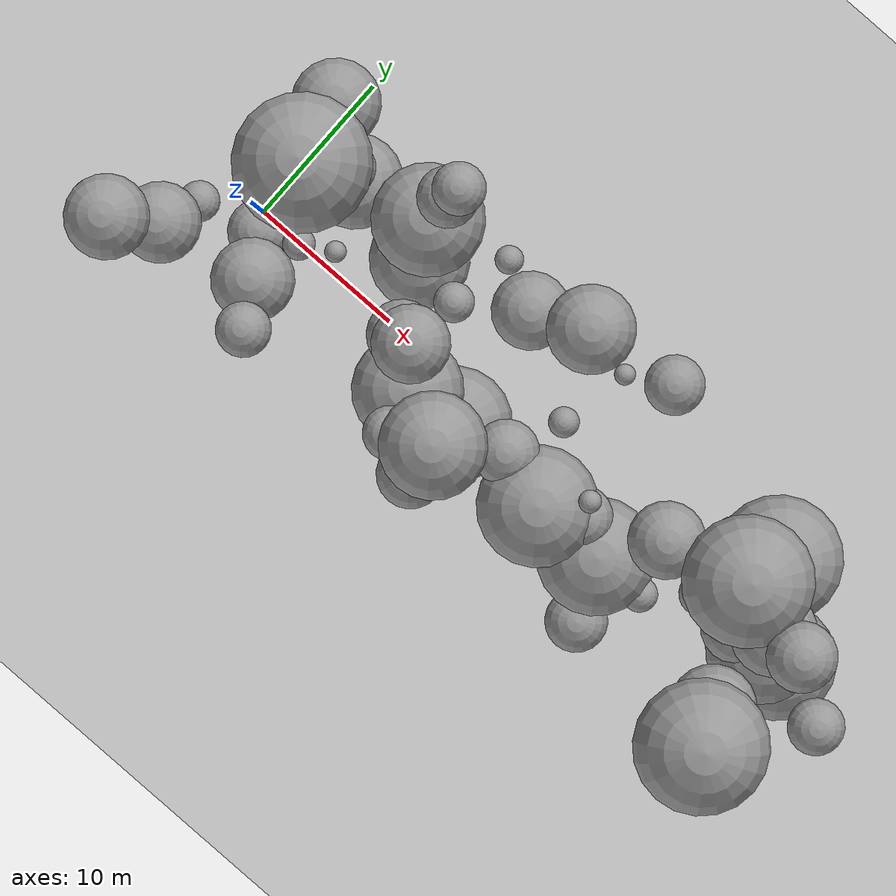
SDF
<sdf version="1.7">
 <world name="default">
  <model name="ground_plane">
   <static>1</static>
   <link name="link">
    <collision name="collision">
     <geometry><plane><normal>0 0 1</normal><size>100 100</size></plane></geometry>
     <surface>
      <contact><collide_bitmask>65535</collide_bitmask></contact>
      <friction><ode><mu>100</mu><mu2>50</mu2></ode></friction>
     </surface>
    </collision>
    <visual name="visual">
     <cast_shadows>0</cast_shadows>
     <geometry><plane><normal>0 0 1</normal><size>100 100</size></plane></geometry>
     <material>
      <script><uri>file://media/materials/scripts/gazebo.material</uri><name>Gazebo/Grey</name></script>
     </material>
    </visual>
   </link>
  </model>
  <model name="sphere_1">
   <static>1</static>
   <pose>13 0 39 0 0 0</pose>
   <link name="link">
    <inertial>
     <mass>3048.6699209422272</mass>
     <inertia>
      <ixx>4579.85359413972</ixx>
      <iyy>4579.85359413972</iyy>
      <izz>4579.85359413972</izz>
      <ixy>0</ixy>
      <ixz>0</ixz>
      <iyz>0</iyz>
     </inertia>
    </inertial>
    <collision name="collision">
     <geometry><sphere><radius>1.93794121379119</radius></sphere></geometry>
    </collision>
    <visual name="visual">
     <geometry><sphere><radius>1.93794121379119</radius></sphere></geometry>
     <material>
      <script><uri>file://media/materials/scripts/gazebo.material</uri><name>Gazebo/Grey</name></script>
     </material>
    </visual>
   </link>
  </model>
  <model name="sphere_54">
   <static>1</static>
   <pose>30 -6 4 0 0 0</pose>
   <link name="link">
    <inertial>
     <mass>2755.609830967307</mass>
     <inertia>
      <ixx>3869.8766966073267</ixx>
      <iyy>3869.8766966073267</iyy>
      <izz>3869.8766966073267</izz>
      <ixy>0</ixy>
      <ixz>0</ixz>
      <iyz>0</iyz>
     </inertia>
    </inertial>
    <collision name="collision">
     <geometry><sphere><radius>1.8737416279485566</radius></sphere></geometry>
    </collision>
    <visual name="visual">
     <geometry><sphere><radius>1.8737416279485566</radius></sphere></geometry>
     <material>
      <script><uri>file://media/materials/scripts/gazebo.material</uri><name>Gazebo/Grey</name></script>
     </material>
    </visual>
   </link>
  </model>
  <model name="sphere_58">
   <static>1</static>
   <pose>32 2 46 0 0 0</pose>
   <link name="link">
    <inertial>
     <mass>12443.0976938875</mass>
     <inertia>
      <ixx>47739.92912858264</ixx>
      <iyy>47739.92912858264</iyy>
      <izz>47739.92912858264</izz>
      <ixy>0</ixy>
      <ixz>0</ixz>
      <iyz>0</iyz>
     </inertia>
    </inertial>
    <collision name="collision">
     <geometry><sphere><radius>3.097038711498315</radius></sphere></geometry>
    </collision>
    <visual name="visual">
     <geometry><sphere><radius>3.097038711498315</radius></sphere></geometry>
     <material>
      <script><uri>file://media/materials/scripts/gazebo.material</uri><name>Gazebo/Grey</name></script>
     </material>
    </visual>
   </link>
  </model>
  <model name="sphere_72">
   <static>1</static>
   <pose>33 4 27 0 0 0</pose>
   <link name="link">
    <inertial>
     <mass>946.7881541357877</mass>
     <inertia>
      <ixx>652.2623002862565</ixx>
      <iyy>652.2623002862565</iyy>
      <izz>652.2623002862565</izz>
      <ixy>0</ixy>
      <ixz>0</ixz>
      <iyz>0</iyz>
     </inertia>
    </inertial>
    <collision name="collision">
     <geometry><sphere><radius>1.3123652898777265</radius></sphere></geometry>
    </collision>
    <visual name="visual">
     <geometry><sphere><radius>1.3123652898777265</radius></sphere></geometry>
     <material>
      <script><uri>file://media/materials/scripts/gazebo.material</uri><name>Gazebo/Grey</name></script>
     </material>
    </visual>
   </link>
  </model>
  <model name="sphere_81">
   <static>1</static>
   <pose>6 1 18 0 0 0</pose>
   <link name="link">
    <inertial>
     <mass>91.40267037665943</mass>
     <inertia>
      <ixx>13.25152088051092</ixx>
      <iyy>13.25152088051092</iyy>
      <izz>13.25152088051092</izz>
      <ixy>0</ixy>
      <ixz>0</ixz>
      <iyz>0</iyz>
     </inertia>
    </inertial>
    <collision name="collision">
     <geometry><sphere><radius>0.6020373354195607</radius></sphere></geometry>
    </collision>
    <visual name="visual">
     <geometry><sphere><radius>0.6020373354195607</radius></sphere></geometry>
     <material>
      <script><uri>file://media/materials/scripts/gazebo.material</uri><name>Gazebo/Grey</name></script>
     </material>
    </visual>
   </link>
  </model>
  <model name="sphere_87">
   <static>1</static>
   <pose>20 -1 21 0 0 0</pose>
   <link name="link">
    <inertial>
     <mass>503.89386410299545</mass>
     <inertia>
      <ixx>227.9813749029584</ixx>
      <iyy>227.9813749029584</iyy>
      <izz>227.9813749029584</izz>
      <ixy>0</ixy>
      <ixz>0</ixz>
      <iyz>0</iyz>
     </inertia>
    </inertial>
    <collision name="collision">
     <geometry><sphere><radius>1.0635310006025596</radius></sphere></geometry>
    </collision>
    <visual name="visual">
     <geometry><sphere><radius>1.0635310006025596</radius></sphere></geometry>
     <material>
      <script><uri>file://media/materials/scripts/gazebo.material</uri><name>Gazebo/Grey</name></script>
     </material>
    </visual>
   </link>
  </model>
  <model name="sphere_88">
   <static>1</static>
   <pose>4 3 46 0 0 0</pose>
   <link name="link">
    <inertial>
     <mass>14665.952596874744</mass>
     <inertia>
      <ixx>62784.34676484951</ixx>
      <iyy>62784.34676484951</iyy>
      <izz>62784.34676484951</izz>
      <ixy>0</ixy>
      <ixz>0</ixz>
      <iyz>0</iyz>
     </inertia>
    </inertial>
    <collision name="collision">
     <geometry><sphere><radius>3.27145202511079</radius></sphere></geometry>
    </collision>
    <visual name="visual">
     <geometry><sphere><radius>3.27145202511079</radius></sphere></geometry>
     <material>
      <script><uri>file://media/materials/scripts/gazebo.material</uri><name>Gazebo/Grey</name></script>
     </material>
    </visual>
   </link>
  </model>
  <model name="sphere_96">
   <static>1</static>
   <pose>13 3 30 0 0 0</pose>
   <link name="link">
    <inertial>
     <mass>486.62380710319786</mass>
     <inertia>
      <ixx>215.10797173776638</ixx>
      <iyy>215.10797173776638</iyy>
      <izz>215.10797173776638</izz>
      <ixy>0</ixy>
      <ixz>0</ixz>
      <iyz>0</iyz>
     </inertia>
    </inertial>
    <collision name="collision">
     <geometry><sphere><radius>1.0512392819846597</radius></sphere></geometry>
    </collision>
    <visual name="visual">
     <geometry><sphere><radius>1.0512392819846597</radius></sphere></geometry>
     <material>
      <script><uri>file://media/materials/scripts/gazebo.material</uri><name>Gazebo/Grey</name></script>
     </material>
    </visual>
   </link>
  </model>
  <model name="sphere_113">
   <static>1</static>
   <pose>23 -2 30 0 0 0</pose>
   <link name="link">
    <inertial>
     <mass>13044.81201714176</mass>
     <inertia>
      <ixx>51649.24295085546</ixx>
      <iyy>51649.24295085546</iyy>
      <izz>51649.24295085546</izz>
      <ixy>0</ixy>
      <ixz>0</ixz>
      <iyz>0</iyz>
     </inertia>
    </inertial>
    <collision name="collision">
     <geometry><sphere><radius>3.1461764210193515</radius></sphere></geometry>
    </collision>
    <visual name="visual">
     <geometry><sphere><radius>3.1461764210193515</radius></sphere></geometry>
     <material>
      <script><uri>file://media/materials/scripts/gazebo.material</uri><name>Gazebo/Grey</name></script>
     </material>
    </visual>
   </link>
  </model>
  <model name="sphere_120">
   <static>1</static>
   <pose>30 -2 28 0 0 0</pose>
   <link name="link">
    <inertial>
     <mass>333.86426904194775</mass>
     <inertia>
      <ixx>114.80236167009156</ixx>
      <iyy>114.80236167009156</iyy>
      <izz>114.80236167009156</izz>
      <ixy>0</ixy>
      <ixz>0</ixz>
      <iyz>0</iyz>
     </inertia>
    </inertial>
    <collision name="collision">
     <geometry><sphere><radius>0.9271722916133385</radius></sphere></geometry>
    </collision>
    <visual name="visual">
     <geometry><sphere><radius>0.9271722916133385</radius></sphere></geometry>
     <material>
      <script><uri>file://media/materials/scripts/gazebo.material</uri><name>Gazebo/Grey</name></script>
     </material>
    </visual>
   </link>
  </model>
  <model name="sphere_129">
   <static>1</static>
   <pose>17 -2 5 0 0 0</pose>
   <link name="link">
    <inertial>
     <mass>17007.558260550955</mass>
     <inertia>
      <ixx>80365.72446040885</ixx>
      <iyy>80365.72446040885</iyy>
      <izz>80365.72446040885</izz>
      <ixy>0</ixy>
      <ixz>0</ixz>
      <iyz>0</iyz>
     </inertia>
    </inertial>
    <collision name="collision">
     <geometry><sphere><radius>3.4370389413171036</radius></sphere></geometry>
    </collision>
    <visual name="visual">
     <geometry><sphere><radius>3.4370389413171036</radius></sphere></geometry>
     <material>
      <script><uri>file://media/materials/scripts/gazebo.material</uri><name>Gazebo/Grey</name></script>
     </material>
    </visual>
   </link>
  </model>
  <model name="sphere_146">
   <static>1</static>
   <pose>3 5 1 0 0 0</pose>
   <link name="link">
    <inertial>
     <mass>10225.495934055374</mass>
     <inertia>
      <ixx>34419.79021896556</ixx>
      <iyy>34419.79021896556</iyy>
      <izz>34419.79021896556</izz>
      <ixy>0</ixy>
      <ixz>0</ixz>
      <iyz>0</iyz>
     </inertia>
    </inertial>
    <collision name="collision">
     <geometry><sphere><radius>2.9008944269264143</radius></sphere></geometry>
    </collision>
    <visual name="visual">
     <geometry><sphere><radius>2.9008944269264143</radius></sphere></geometry>
     <material>
      <script><uri>file://media/materials/scripts/gazebo.material</uri><name>Gazebo/Grey</name></script>
     </material>
    </visual>
   </link>
  </model>
  <model name="sphere_149">
   <static>1</static>
   <pose>40 0 8 0 0 0</pose>
   <link name="link">
    <inertial>
     <mass>16859.97648539</mass>
     <inertia>
      <ixx>79206.81061304221</ixx>
      <iyy>79206.81061304221</iyy>
      <izz>79206.81061304221</izz>
      <ixy>0</ixy>
      <ixz>0</ixz>
      <iyz>0</iyz>
     </inertia>
    </inertial>
    <collision name="collision">
     <geometry><sphere><radius>3.4270684994350193</radius></sphere></geometry>
    </collision>
    <visual name="visual">
     <geometry><sphere><radius>3.4270684994350193</radius></sphere></geometry>
     <material>
      <script><uri>file://media/materials/scripts/gazebo.material</uri><name>Gazebo/Grey</name></script>
     </material>
    </visual>
   </link>
  </model>
  <model name="sphere_152">
   <static>1</static>
   <pose>24 0 49 0 0 0</pose>
   <link name="link">
    <inertial>
     <mass>60.81317559955629</mass>
     <inertia>
      <ixx>6.71939836152315</ixx>
      <iyy>6.71939836152315</iyy>
      <izz>6.71939836152315</izz>
      <ixy>0</ixy>
      <ixz>0</ixz>
      <iyz>0</iyz>
     </inertia>
    </inertial>
    <collision name="collision">
     <geometry><sphere><radius>0.5255770073567572</radius></sphere></geometry>
    </collision>
    <visual name="visual">
     <geometry><sphere><radius>0.5255770073567572</radius></sphere></geometry>
     <material>
      <script><uri>file://media/materials/scripts/gazebo.material</uri><name>Gazebo/Grey</name></script>
     </material>
    </visual>
   </link>
  </model>
  <model name="sphere_154">
   <static>1</static>
   <pose>22 6 28 0 0 0</pose>
   <link name="link">
    <inertial>
     <mass>71.78658373982458</mass>
     <inertia>
      <ixx>8.85944253146453</ixx>
      <iyy>8.85944253146453</iyy>
      <izz>8.85944253146453</izz>
      <ixy>0</ixy>
      <ixz>0</ixz>
      <iyz>0</iyz>
     </inertia>
    </inertial>
    <collision name="collision">
     <geometry><sphere><radius>0.5554584257177387</radius></sphere></geometry>
    </collision>
    <visual name="visual">
     <geometry><sphere><radius>0.5554584257177387</radius></sphere></geometry>
     <material>
      <script><uri>file://media/materials/scripts/gazebo.material</uri><name>Gazebo/Grey</name></script>
     </material>
    </visual>
   </link>
  </model>
  <model name="sphere_157">
   <static>1</static>
   <pose>1 7 21 0 0 0</pose>
   <link name="link">
    <inertial>
     <mass>6074.0897978101375</mass>
     <inertia>
      <ixx>14447.840283739253</ixx>
      <iyy>14447.840283739253</iyy>
      <izz>14447.840283739253</izz>
      <ixy>0</ixy>
      <ixz>0</ixz>
      <iyz>0</iyz>
     </inertia>
    </inertial>
    <collision name="collision">
     <geometry><sphere><radius>2.4385455163841856</radius></sphere></geometry>
    </collision>
    <visual name="visual">
     <geometry><sphere><radius>2.4385455163841856</radius></sphere></geometry>
     <material>
      <script><uri>file://media/materials/scripts/gazebo.material</uri><name>Gazebo/Grey</name></script>
     </material>
    </visual>
   </link>
  </model>
  <model name="sphere_161">
   <static>1</static>
   <pose>9 7 25 0 0 0</pose>
   <link name="link">
    <inertial>
     <mass>1889.314666345043</mass>
     <inertia>
      <ixx>2063.04204165979</ixx>
      <iyy>2063.04204165979</iyy>
      <izz>2063.04204165979</izz>
      <ixy>0</ixy>
      <ixz>0</ixz>
      <iyz>0</iyz>
     </inertia>
    </inertial>
    <collision name="collision">
     <geometry><sphere><radius>1.6522352958669095</radius></sphere></geometry>
    </collision>
    <visual name="visual">
     <geometry><sphere><radius>1.6522352958669095</radius></sphere></geometry>
     <material>
      <script><uri>file://media/materials/scripts/gazebo.material</uri><name>Gazebo/Grey</name></script>
     </material>
    </visual>
   </link>
  </model>
  <model name="sphere_185">
   <static>1</static>
   <pose>12 0 27 0 0 0</pose>
   <link name="link">
    <inertial>
     <mass>2703.74761349404</mass>
     <inertia>
      <ixx>3749.250864729812</ixx>
      <iyy>3749.250864729812</iyy>
      <izz>3749.250864729812</izz>
      <ixy>0</ixy>
      <ixz>0</ixz>
      <iyz>0</iyz>
     </inertia>
    </inertial>
    <collision name="collision">
     <geometry><sphere><radius>1.86191212420649</radius></sphere></geometry>
    </collision>
    <visual name="visual">
     <geometry><sphere><radius>1.86191212420649</radius></sphere></geometry>
     <material>
      <script><uri>file://media/materials/scripts/gazebo.material</uri><name>Gazebo/Grey</name></script>
     </material>
    </visual>
   </link>
  </model>
  <model name="sphere_192">
   <static>1</static>
   <pose>-3 -2 3 0 0 0</pose>
   <link name="link">
    <inertial>
     <mass>782.752178188615</mass>
     <inertia>
      <ixx>475.0158048431129</ixx>
      <iyy>475.0158048431129</iyy>
      <izz>475.0158048431129</izz>
      <ixy>0</ixy>
      <ixz>0</ixz>
      <iyz>0</iyz>
     </inertia>
    </inertial>
    <collision name="collision">
     <geometry><sphere><radius>1.231719712184372</radius></sphere></geometry>
    </collision>
    <visual name="visual">
     <geometry><sphere><radius>1.231719712184372</radius></sphere></geometry>
     <material>
      <script><uri>file://media/materials/scripts/gazebo.material</uri><name>Gazebo/Grey</name></script>
     </material>
    </visual>
   </link>
  </model>
  <model name="sphere_193">
   <static>1</static>
   <pose>10 7 42 0 0 0</pose>
   <link name="link">
    <inertial>
     <mass>912.2068010519052</mass>
     <inertia>
      <ixx>613.0413395664663</ixx>
      <iyy>613.0413395664663</iyy>
      <izz>613.0413395664663</izz>
      <ixy>0</ixy>
      <ixz>0</ixz>
      <iyz>0</iyz>
     </inertia>
    </inertial>
    <collision name="collision">
     <geometry><sphere><radius>1.2961887034868493</radius></sphere></geometry>
    </collision>
    <visual name="visual">
     <geometry><sphere><radius>1.2961887034868493</radius></sphere></geometry>
     <material>
      <script><uri>file://media/materials/scripts/gazebo.material</uri><name>Gazebo/Grey</name></script>
     </material>
    </visual>
   </link>
  </model>
  <model name="sphere_196">
   <static>1</static>
   <pose>20 -1 31 0 0 0</pose>
   <link name="link">
    <inertial>
     <mass>2126.913555151139</mass>
     <inertia>
      <ixx>2513.336569067436</ixx>
      <iyy>2513.336569067436</iyy>
      <izz>2513.336569067436</izz>
      <ixy>0</ixy>
      <ixz>0</ixz>
      <iyz>0</iyz>
     </inertia>
    </inertial>
    <collision name="collision">
     <geometry><sphere><radius>1.7187804686137285</radius></sphere></geometry>
    </collision>
    <visual name="visual">
     <geometry><sphere><radius>1.7187804686137285</radius></sphere></geometry>
     <material>
      <script><uri>file://media/materials/scripts/gazebo.material</uri><name>Gazebo/Grey</name></script>
     </material>
    </visual>
   </link>
  </model>
  <model name="sphere_207">
   <static>1</static>
   <pose>3 5 12 0 0 0</pose>
   <link name="link">
    <inertial>
     <mass>1828.9308935458514</mass>
     <inertia>
      <ixx>1954.3233080284735</ixx>
      <iyy>1954.3233080284735</iyy>
      <izz>1954.3233080284735</izz>
      <ixy>0</ixy>
      <ixz>0</ixz>
      <iyz>0</iyz>
     </inertia>
    </inertial>
    <collision name="collision">
     <geometry><sphere><radius>1.6344421822767452</radius></sphere></geometry>
    </collision>
    <visual name="visual">
     <geometry><sphere><radius>1.6344421822767452</radius></sphere></geometry>
     <material>
      <script><uri>file://media/materials/scripts/gazebo.material</uri><name>Gazebo/Grey</name></script>
     </material>
    </visual>
   </link>
  </model>
  <model name="sphere_212">
   <static>1</static>
   <pose>21 2 39 0 0 0</pose>
   <link name="link">
    <inertial>
     <mass>178.6730815562006</mass>
     <inertia>
      <ixx>40.49792744412954</ixx>
      <iyy>40.49792744412954</iyy>
      <izz>40.49792744412954</izz>
      <ixy>0</ixy>
      <ixz>0</ixz>
      <iyz>0</iyz>
     </inertia>
    </inertial>
    <collision name="collision">
     <geometry><sphere><radius>0.7527605301835576</radius></sphere></geometry>
    </collision>
    <visual name="visual">
     <geometry><sphere><radius>0.7527605301835576</radius></sphere></geometry>
     <material>
      <script><uri>file://media/materials/scripts/gazebo.material</uri><name>Gazebo/Grey</name></script>
     </material>
    </visual>
   </link>
  </model>
  <model name="sphere_215">
   <static>1</static>
   <pose>8 6 5 0 0 0</pose>
   <link name="link">
    <inertial>
     <mass>16224.346784889298</mass>
     <inertia>
      <ixx>74292.72461627575</ixx>
      <iyy>74292.72461627575</iyy>
      <izz>74292.72461627575</izz>
      <ixy>0</ixy>
      <ixz>0</ixz>
      <iyz>0</iyz>
     </inertia>
    </inertial>
    <collision name="collision">
     <geometry><sphere><radius>3.3834482403020516</radius></sphere></geometry>
    </collision>
    <visual name="visual">
     <geometry><sphere><radius>3.3834482403020516</radius></sphere></geometry>
     <material>
      <script><uri>file://media/materials/scripts/gazebo.material</uri><name>Gazebo/Grey</name></script>
     </material>
    </visual>
   </link>
  </model>
  <model name="sphere_238">
   <static>1</static>
   <pose>35 1 41 0 0 0</pose>
   <link name="link">
    <inertial>
     <mass>3934.987230717011</mass>
     <inertia>
      <ixx>7007.661748162007</ixx>
      <iyy>7007.661748162007</iyy>
      <izz>7007.661748162007</izz>
      <ixy>0</ixy>
      <ixz>0</ixz>
      <iyz>0</iyz>
     </inertia>
    </inertial>
    <collision name="collision">
     <geometry><sphere><radius>2.110011906791858</radius></sphere></geometry>
    </collision>
    <visual name="visual">
     <geometry><sphere><radius>2.110011906791858</radius></sphere></geometry>
     <material>
      <script><uri>file://media/materials/scripts/gazebo.material</uri><name>Gazebo/Grey</name></script>
     </material>
    </visual>
   </link>
  </model>
  <model name="sphere_239">
   <static>1</static>
   <pose>14 -2 23 0 0 0</pose>
   <link name="link">
    <inertial>
     <mass>11256.951355037407</mass>
     <inertia>
      <ixx>40398.84052504789</ixx>
      <iyy>40398.84052504789</iyy>
      <izz>40398.84052504789</izz>
      <ixy>0</ixy>
      <ixz>0</ixz>
      <iyz>0</iyz>
     </inertia>
    </inertial>
    <collision name="collision">
     <geometry><sphere><radius>2.9953257499664327</radius></sphere></geometry>
    </collision>
    <visual name="visual">
     <geometry><sphere><radius>2.9953257499664327</radius></sphere></geometry>
     <material>
      <script><uri>file://media/materials/scripts/gazebo.material</uri><name>Gazebo/Grey</name></script>
     </material>
    </visual>
   </link>
  </model>
  <model name="sphere_249">
   <static>1</static>
   <pose>38 0 15 0 0 0</pose>
   <link name="link">
    <inertial>
     <mass>13074.528446983682</mass>
     <inertia>
      <ixx>51845.489074067475</ixx>
      <iyy>51845.489074067475</iyy>
      <izz>51845.489074067475</izz>
      <ixy>0</ixy>
      <ixz>0</ixz>
      <iyz>0</iyz>
     </inertia>
    </inertial>
    <collision name="collision">
     <geometry><sphere><radius>3.148563633835994</radius></sphere></geometry>
    </collision>
    <visual name="visual">
     <geometry><sphere><radius>3.148563633835994</radius></sphere></geometry>
     <material>
      <script><uri>file://media/materials/scripts/gazebo.material</uri><name>Gazebo/Grey</name></script>
     </material>
    </visual>
   </link>
  </model>
  <model name="sphere_251">
   <static>1</static>
   <pose>27 -2 28 0 0 0</pose>
   <link name="link">
    <inertial>
     <mass>12432.28847220898</mass>
     <inertia>
      <ixx>47670.83030622583</ixx>
      <iyy>47670.83030622583</iyy>
      <izz>47670.83030622583</izz>
      <ixy>0</ixy>
      <ixz>0</ixz>
      <iyz>0</iyz>
     </inertia>
    </inertial>
    <collision name="collision">
     <geometry><sphere><radius>3.0961416605897685</radius></sphere></geometry>
    </collision>
    <visual name="visual">
     <geometry><sphere><radius>3.0961416605897685</radius></sphere></geometry>
     <material>
      <script><uri>file://media/materials/scripts/gazebo.material</uri><name>Gazebo/Grey</name></script>
     </material>
    </visual>
   </link>
  </model>
  <model name="sphere_259">
   <static>1</static>
   <pose>4 2 39 0 0 0</pose>
   <link name="link">
    <inertial>
     <mass>1623.7628928242807</mass>
     <inertia>
      <ixx>1602.7727099161402</ixx>
      <iyy>1602.7727099161402</iyy>
      <izz>1602.7727099161402</izz>
      <ixy>0</ixy>
      <ixz>0</ixz>
      <iyz>0</iyz>
     </inertia>
    </inertial>
    <collision name="collision">
     <geometry><sphere><radius>1.570885994570619</radius></sphere></geometry>
    </collision>
    <visual name="visual">
     <geometry><sphere><radius>1.570885994570619</radius></sphere></geometry>
     <material>
      <script><uri>file://media/materials/scripts/gazebo.material</uri><name>Gazebo/Grey</name></script>
     </material>
    </visual>
   </link>
  </model>
  <model name="sphere_279">
   <static>1</static>
   <pose>24 7 35 0 0 0</pose>
   <link name="link">
    <inertial>
     <mass>1445.3788887748742</mass>
     <inertia>
      <ixx>1320.1920008179318</ixx>
      <iyy>1320.1920008179318</iyy>
      <izz>1320.1920008179318</izz>
      <ixy>0</ixy>
      <ixz>0</ixz>
      <iyz>0</iyz>
     </inertia>
    </inertial>
    <collision name="collision">
     <geometry><sphere><radius>1.5111156356033262</radius></sphere></geometry>
    </collision>
    <visual name="visual">
     <geometry><sphere><radius>1.5111156356033262</radius></sphere></geometry>
     <material>
      <script><uri>file://media/materials/scripts/gazebo.material</uri><name>Gazebo/Grey</name></script>
     </material>
    </visual>
   </link>
  </model>
  <model name="sphere_282">
   <static>1</static>
   <pose>29 1 31 0 0 0</pose>
   <link name="link">
    <inertial>
     <mass>3349.2305293964923</mass>
     <inertia>
      <ixx>5356.8479646892065</ixx>
      <iyy>5356.8479646892065</iyy>
      <izz>5356.8479646892065</izz>
      <ixy>0</ixy>
      <ixz>0</ixz>
      <iyz>0</iyz>
     </inertia>
    </inertial>
    <collision name="collision">
     <geometry><sphere><radius>1.9996415119650086</radius></sphere></geometry>
    </collision>
    <visual name="visual">
     <geometry><sphere><radius>1.9996415119650086</radius></sphere></geometry>
     <material>
      <script><uri>file://media/materials/scripts/gazebo.material</uri><name>Gazebo/Grey</name></script>
     </material>
    </visual>
   </link>
  </model>
  <model name="sphere_283">
   <static>1</static>
   <pose>15 -4 35 0 0 0</pose>
   <link name="link">
    <inertial>
     <mass>1078.0852341939874</mass>
     <inertia>
      <ixx>809.8838676551918</ixx>
      <iyy>809.8838676551918</iyy>
      <izz>809.8838676551918</izz>
      <ixy>0</ixy>
      <ixz>0</ixz>
      <iyz>0</iyz>
     </inertia>
    </inertial>
    <collision name="collision">
     <geometry><sphere><radius>1.3704236016618978</radius></sphere></geometry>
    </collision>
    <visual name="visual">
     <geometry><sphere><radius>1.3704236016618978</radius></sphere></geometry>
     <material>
      <script><uri>file://media/materials/scripts/gazebo.material</uri><name>Gazebo/Grey</name></script>
     </material>
    </visual>
   </link>
  </model>
  <model name="sphere_286">
   <static>1</static>
   <pose>34 4 30 0 0 0</pose>
   <link name="link">
    <inertial>
     <mass>15158.32860063909</mass>
     <inertia>
      <ixx>66336.5855857625</ixx>
      <iyy>66336.5855857625</iyy>
      <izz>66336.5855857625</izz>
      <ixy>0</ixy>
      <ixz>0</ixz>
      <iyz>0</iyz>
     </inertia>
    </inertial>
    <collision name="collision">
     <geometry><sphere><radius>3.3076603153128254</radius></sphere></geometry>
    </collision>
    <visual name="visual">
     <geometry><sphere><radius>3.3076603153128254</radius></sphere></geometry>
     <material>
      <script><uri>file://media/materials/scripts/gazebo.material</uri><name>Gazebo/Grey</name></script>
     </material>
    </visual>
   </link>
  </model>
  <model name="sphere_291">
   <static>1</static>
   <pose>-2 -4 20 0 0 0</pose>
   <link name="link">
    <inertial>
     <mass>4596.4980085797115</mass>
     <inertia>
      <ixx>9079.167860055952</ixx>
      <iyy>9079.167860055952</iyy>
      <izz>9079.167860055952</izz>
      <ixy>0</ixy>
      <ixz>0</ixz>
      <iyz>0</iyz>
     </inertia>
    </inertial>
    <collision name="collision">
     <geometry><sphere><radius>2.222181301942708</radius></sphere></geometry>
    </collision>
    <visual name="visual">
     <geometry><sphere><radius>2.222181301942708</radius></sphere></geometry>
     <material>
      <script><uri>file://media/materials/scripts/gazebo.material</uri><name>Gazebo/Grey</name></script>
     </material>
    </visual>
   </link>
  </model>
  <model name="sphere_297">
   <static>1</static>
   <pose>4 -3 23 0 0 0</pose>
   <link name="link">
    <inertial>
     <mass>4789.562515513738</mass>
     <inertia>
      <ixx>9723.605460819303</ixx>
      <iyy>9723.605460819303</iyy>
      <izz>9723.605460819303</izz>
      <ixy>0</ixy>
      <ixz>0</ixz>
      <iyz>0</iyz>
     </inertia>
    </inertial>
    <collision name="collision">
     <geometry><sphere><radius>2.252867996629007</radius></sphere></geometry>
    </collision>
    <visual name="visual">
     <geometry><sphere><radius>2.252867996629007</radius></sphere></geometry>
     <material>
      <script><uri>file://media/materials/scripts/gazebo.material</uri><name>Gazebo/Grey</name></script>
     </material>
    </visual>
   </link>
  </model>
  <model name="sphere_306">
   <static>1</static>
   <pose>37 -4 25 0 0 0</pose>
   <link name="link">
    <inertial>
     <mass>5194.850461274673</mass>
     <inertia>
      <ixx>11133.268147405368</ixx>
      <iyy>11133.268147405368</iyy>
      <izz>11133.268147405368</izz>
      <ixy>0</ixy>
      <ixz>0</ixz>
      <iyz>0</iyz>
     </inertia>
    </inertial>
    <collision name="collision">
     <geometry><sphere><radius>2.314700544094105</radius></sphere></geometry>
    </collision>
    <visual name="visual">
     <geometry><sphere><radius>2.314700544094105</radius></sphere></geometry>
     <material>
      <script><uri>file://media/materials/scripts/gazebo.material</uri><name>Gazebo/Grey</name></script>
     </material>
    </visual>
   </link>
  </model>
  <model name="sphere_309">
   <static>1</static>
   <pose>4 0 15 0 0 0</pose>
   <link name="link">
    <inertial>
     <mass>326.8244057745188</mass>
     <inertia>
      <ixx>110.79624760766455</ixx>
      <iyy>110.79624760766455</iyy>
      <izz>110.79624760766455</izz>
      <ixy>0</ixy>
      <ixz>0</ixz>
      <iyz>0</iyz>
     </inertia>
    </inertial>
    <collision name="collision">
     <geometry><sphere><radius>0.9206091568786413</radius></sphere></geometry>
    </collision>
    <visual name="visual">
     <geometry><sphere><radius>0.9206091568786413</radius></sphere></geometry>
     <material>
      <script><uri>file://media/materials/scripts/gazebo.material</uri><name>Gazebo/Grey</name></script>
     </material>
    </visual>
   </link>
  </model>
  <model name="sphere_321">
   <static>1</static>
   <pose>36 1 47 0 0 0</pose>
   <link name="link">
    <inertial>
     <mass>1902.653447897105</mass>
     <inertia>
      <ixx>2087.3746547219644</ixx>
      <iyy>2087.3746547219644</iyy>
      <izz>2087.3746547219644</izz>
      <ixy>0</ixy>
      <ixz>0</ixz>
      <iyz>0</iyz>
     </inertia>
    </inertial>
    <collision name="collision">
     <geometry><sphere><radius>1.65611450544542</radius></sphere></geometry>
    </collision>
    <visual name="visual">
     <geometry><sphere><radius>1.65611450544542</radius></sphere></geometry>
     <material>
      <script><uri>file://media/materials/scripts/gazebo.material</uri><name>Gazebo/Grey</name></script>
     </material>
    </visual>
   </link>
  </model>
  <model name="sphere_325">
   <static>1</static>
   <pose>17 -3 38 0 0 0</pose>
   <link name="link">
    <inertial>
     <mass>7964.572471552749</mass>
     <inertia>
      <ixx>22695.427397818585</ixx>
      <iyy>22695.427397818585</iyy>
      <izz>22695.427397818585</izz>
      <ixy>0</ixy>
      <ixz>0</ixz>
      <iyz>0</iyz>
     </inertia>
    </inertial>
    <collision name="collision">
     <geometry><sphere><radius>2.6690576416446254</radius></sphere></geometry>
    </collision>
    <visual name="visual">
     <geometry><sphere><radius>2.6690576416446254</radius></sphere></geometry>
     <material>
      <script><uri>file://media/materials/scripts/gazebo.material</uri><name>Gazebo/Grey</name></script>
     </material>
    </visual>
   </link>
  </model>
  <model name="sphere_326">
   <static>1</static>
   <pose>6 -5 32 0 0 0</pose>
   <link name="link">
    <inertial>
     <mass>1196.9614467693636</mass>
     <inertia>
      <ixx>964.1276150863124</ixx>
      <iyy>964.1276150863124</iyy>
      <izz>964.1276150863124</izz>
      <ixy>0</ixy>
      <ixz>0</ixz>
      <iyz>0</iyz>
     </inertia>
    </inertial>
    <collision name="collision">
     <geometry><sphere><radius>1.419048321558418</radius></sphere></geometry>
    </collision>
    <visual name="visual">
     <geometry><sphere><radius>1.419048321558418</radius></sphere></geometry>
     <material>
      <script><uri>file://media/materials/scripts/gazebo.material</uri><name>Gazebo/Grey</name></script>
     </material>
    </visual>
   </link>
  </model>
  <model name="sphere_340">
   <static>1</static>
   <pose>39 -1 44 0 0 0</pose>
   <link name="link">
    <inertial>
     <mass>1044.077718057068</mass>
     <inertia>
      <ixx>767.7543708419951</ixx>
      <iyy>767.7543708419951</iyy>
      <izz>767.7543708419951</izz>
      <ixy>0</ixy>
      <ixz>0</ixz>
      <iyz>0</iyz>
     </inertia>
    </inertial>
    <collision name="collision">
     <geometry><sphere><radius>1.3558596591888166</radius></sphere></geometry>
    </collision>
    <visual name="visual">
     <geometry><sphere><radius>1.3558596591888166</radius></sphere></geometry>
     <material>
      <script><uri>file://media/materials/scripts/gazebo.material</uri><name>Gazebo/Grey</name></script>
     </material>
    </visual>
   </link>
  </model>
  <model name="sphere_344">
   <static>1</static>
   <pose>36 0 17 0 0 0</pose>
   <link name="link">
    <inertial>
     <mass>3536.2168424641686</mass>
     <inertia>
      <ixx>5864.51901749433</ixx>
      <iyy>5864.51901749433</iyy>
      <izz>5864.51901749433</izz>
      <ixy>0</ixy>
      <ixz>0</ixz>
      <iyz>0</iyz>
     </inertia>
    </inertial>
    <collision name="collision">
     <geometry><sphere><radius>2.036182777039003</radius></sphere></geometry>
    </collision>
    <visual name="visual">
     <geometry><sphere><radius>2.036182777039003</radius></sphere></geometry>
     <material>
      <script><uri>file://media/materials/scripts/gazebo.material</uri><name>Gazebo/Grey</name></script>
     </material>
    </visual>
   </link>
  </model>
  <model name="sphere_349">
   <static>1</static>
   <pose>9 4 2 0 0 0</pose>
   <link name="link">
    <inertial>
     <mass>11547.93825158481</mass>
     <inertia>
      <ixx>42154.2797602415</ixx>
      <iyy>42154.2797602415</iyy>
      <izz>42154.2797602415</izz>
      <ixy>0</ixy>
      <ixz>0</ixz>
      <iyz>0</iyz>
     </inertia>
    </inertial>
    <collision name="collision">
     <geometry><sphere><radius>3.0209157577263026</radius></sphere></geometry>
    </collision>
    <visual name="visual">
     <geometry><sphere><radius>3.0209157577263026</radius></sphere></geometry>
     <material>
      <script><uri>file://media/materials/scripts/gazebo.material</uri><name>Gazebo/Grey</name></script>
     </material>
    </visual>
   </link>
  </model>
  <model name="sphere_350">
   <static>1</static>
   <pose>1 -1 5 0 0 0</pose>
   <link name="link">
    <inertial>
     <mass>2748.840734483925</mass>
     <inertia>
      <ixx>3854.045891530486</ixx>
      <iyy>3854.045891530486</iyy>
      <izz>3854.045891530486</izz>
      <ixy>0</ixy>
      <ixz>0</ixz>
      <iyz>0</iyz>
     </inertia>
    </inertial>
    <collision name="collision">
     <geometry><sphere><radius>1.8722061012166962</radius></sphere></geometry>
    </collision>
    <visual name="visual">
     <geometry><sphere><radius>1.8722061012166962</radius></sphere></geometry>
     <material>
      <script><uri>file://media/materials/scripts/gazebo.material</uri><name>Gazebo/Grey</name></script>
     </material>
    </visual>
   </link>
  </model>
  <model name="sphere_351">
   <static>1</static>
   <pose>19 6 45 0 0 0</pose>
   <link name="link">
    <inertial>
     <mass>3908.758972398132</mass>
     <inertia>
      <ixx>6929.986741579065</ixx>
      <iyy>6929.986741579065</iyy>
      <izz>6929.986741579065</izz>
      <ixy>0</ixy>
      <ixz>0</ixz>
      <iyz>0</iyz>
     </inertia>
    </inertial>
    <collision name="collision">
     <geometry><sphere><radius>2.1053134287422823</radius></sphere></geometry>
    </collision>
    <visual name="visual">
     <geometry><sphere><radius>2.1053134287422823</radius></sphere></geometry>
     <material>
      <script><uri>file://media/materials/scripts/gazebo.material</uri><name>Gazebo/Grey</name></script>
     </material>
    </visual>
   </link>
  </model>
  <model name="sphere_354">
   <static>1</static>
   <pose>14 6 43 0 0 0</pose>
   <link name="link">
    <inertial>
     <mass>133.26211448896174</mass>
     <inertia>
      <ixx>24.841553514166446</ixx>
      <iyy>24.841553514166446</iyy>
      <izz>24.841553514166446</izz>
      <ixy>0</ixy>
      <ixz>0</ixz>
      <iyz>0</iyz>
     </inertia>
    </inertial>
    <collision name="collision">
     <geometry><sphere><radius>0.6826624738742364</radius></sphere></geometry>
    </collision>
    <visual name="visual">
     <geometry><sphere><radius>0.6826624738742364</radius></sphere></geometry>
     <material>
      <script><uri>file://media/materials/scripts/gazebo.material</uri><name>Gazebo/Grey</name></script>
     </material>
    </visual>
   </link>
  </model>
  <model name="sphere_398">
   <static>1</static>
   <pose>34 0 9 0 0 0</pose>
   <link name="link">
    <inertial>
     <mass>806.2361949155135</mass>
     <inertia>
      <ixx>499.0048162771533</ixx>
      <iyy>499.0048162771533</iyy>
      <izz>499.0048162771533</izz>
      <ixy>0</ixy>
      <ixz>0</ixz>
      <iyz>0</iyz>
     </inertia>
    </inertial>
    <collision name="collision">
     <geometry><sphere><radius>1.2439164964571656</radius></sphere></geometry>
    </collision>
    <visual name="visual">
     <geometry><sphere><radius>1.2439164964571656</radius></sphere></geometry>
     <material>
      <script><uri>file://media/materials/scripts/gazebo.material</uri><name>Gazebo/Grey</name></script>
     </material>
    </visual>
   </link>
  </model>
  <model name="sphere_407">
   <static>1</static>
   <pose>25 -1 30 0 0 0</pose>
   <link name="link">
    <inertial>
     <mass>1972.9983521623064</mass>
     <inertia>
      <ixx>2217.5774123464435</ixx>
      <iyy>2217.5774123464435</iyy>
      <izz>2217.5774123464435</izz>
      <ixy>0</ixy>
      <ixz>0</ixz>
      <iyz>0</iyz>
     </inertia>
    </inertial>
    <collision name="collision">
     <geometry><sphere><radius>1.676277971089502</radius></sphere></geometry>
    </collision>
    <visual name="visual">
     <geometry><sphere><radius>1.676277971089502</radius></sphere></geometry>
     <material>
      <script><uri>file://media/materials/scripts/gazebo.material</uri><name>Gazebo/Grey</name></script>
     </material>
    </visual>
   </link>
  </model>
  <model name="sphere_430">
   <static>1</static>
   <pose>-3 -5 36 0 0 0</pose>
   <link name="link">
    <inertial>
     <mass>1455.503190196602</mass>
     <inertia>
      <ixx>1335.6403208659608</ixx>
      <iyy>1335.6403208659608</iyy>
      <izz>1335.6403208659608</izz>
      <ixy>0</ixy>
      <ixz>0</ixz>
      <iyz>0</iyz>
     </inertia>
    </inertial>
    <collision name="collision">
     <geometry><sphere><radius>1.5146356831962786</radius></sphere></geometry>
    </collision>
    <visual name="visual">
     <geometry><sphere><radius>1.5146356831962786</radius></sphere></geometry>
     <material>
      <script><uri>file://media/materials/scripts/gazebo.material</uri><name>Gazebo/Grey</name></script>
     </material>
    </visual>
   </link>
  </model>
  <model name="sphere_432">
   <static>1</static>
   <pose>35 -5 49 0 0 0</pose>
   <link name="link">
    <inertial>
     <mass>12754.159401516483</mass>
     <inertia>
      <ixx>49745.52125584371</ixx>
      <iyy>49745.52125584371</iyy>
      <izz>49745.52125584371</izz>
      <ixy>0</ixy>
      <ixz>0</ixz>
      <iyz>0</iyz>
     </inertia>
    </inertial>
    <collision name="collision">
     <geometry><sphere><radius>3.122633949394359</radius></sphere></geometry>
    </collision>
    <visual name="visual">
     <geometry><sphere><radius>3.122633949394359</radius></sphere></geometry>
     <material>
      <script><uri>file://media/materials/scripts/gazebo.material</uri><name>Gazebo/Grey</name></script>
     </material>
    </visual>
   </link>
  </model>
  <model name="sphere_439">
   <static>1</static>
   <pose>18 -3 1 0 0 0</pose>
   <link name="link">
    <inertial>
     <mass>127.95969821180233</mass>
     <inertia>
      <ixx>23.21611770912997</ixx>
      <iyy>23.21611770912997</iyy>
      <izz>23.21611770912997</izz>
      <ixy>0</ixy>
      <ixz>0</ixz>
      <iyz>0</iyz>
     </inertia>
    </inertial>
    <collision name="collision">
     <geometry><sphere><radius>0.6734854215155196</radius></sphere></geometry>
    </collision>
    <visual name="visual">
     <geometry><sphere><radius>0.6734854215155196</radius></sphere></geometry>
     <material>
      <script><uri>file://media/materials/scripts/gazebo.material</uri><name>Gazebo/Grey</name></script>
     </material>
    </visual>
   </link>
  </model>
  <model name="sphere_442">
   <static>1</static>
   <pose>33 4 6 0 0 0</pose>
   <link name="link">
    <inertial>
     <mass>92.67572809153737</mass>
     <inertia>
      <ixx>13.56055911416489</ixx>
      <iyy>13.56055911416489</iyy>
      <izz>13.56055911416489</izz>
      <ixy>0</ixy>
      <ixz>0</ixz>
      <iyz>0</iyz>
     </inertia>
    </inertial>
    <collision name="collision">
     <geometry><sphere><radius>0.6048195199252406</radius></sphere></geometry>
    </collision>
    <visual name="visual">
     <geometry><sphere><radius>0.6048195199252406</radius></sphere></geometry>
     <material>
      <script><uri>file://media/materials/scripts/gazebo.material</uri><name>Gazebo/Grey</name></script>
     </material>
    </visual>
   </link>
  </model>
  <model name="sphere_467">
   <static>1</static>
   <pose>2 4 24 0 0 0</pose>
   <link name="link">
    <inertial>
     <mass>964.6744565635172</mass>
     <inertia>
      <ixx>672.9284404450626</ixx>
      <iyy>672.9284404450626</iyy>
      <izz>672.9284404450626</izz>
      <ixy>0</ixy>
      <ixz>0</ixz>
      <iyz>0</iyz>
     </inertia>
    </inertial>
    <collision name="collision">
     <geometry><sphere><radius>1.3205779959445598</radius></sphere></geometry>
    </collision>
    <visual name="visual">
     <geometry><sphere><radius>1.3205779959445598</radius></sphere></geometry>
     <material>
      <script><uri>file://media/materials/scripts/gazebo.material</uri><name>Gazebo/Grey</name></script>
     </material>
    </visual>
   </link>
  </model>
  <model name="sphere_475">
   <static>1</static>
   <pose>16 6 3 0 0 0</pose>
   <link name="link">
    <inertial>
     <mass>5533.891927857386</mass>
     <inertia>
      <ixx>12370.44646871141</ixx>
      <iyy>12370.44646871141</iyy>
      <izz>12370.44646871141</izz>
      <ixy>0</ixy>
      <ixz>0</ixz>
      <iyz>0</iyz>
     </inertia>
    </inertial>
    <collision name="collision">
     <geometry><sphere><radius>2.3639993605208343</radius></sphere></geometry>
    </collision>
    <visual name="visual">
     <geometry><sphere><radius>2.3639993605208343</radius></sphere></geometry>
     <material>
      <script><uri>file://media/materials/scripts/gazebo.material</uri><name>Gazebo/Grey</name></script>
     </material>
    </visual>
   </link>
  </model>
  <model name="sphere_486">
   <static>1</static>
   <pose>-2 -5 39 0 0 0</pose>
   <link name="link">
    <inertial>
     <mass>3830.766323367216</mass>
     <inertia>
      <ixx>6701.062777121023</ixx>
      <iyy>6701.062777121023</iyy>
      <izz>6701.062777121023</izz>
      <ixy>0</ixy>
      <ixz>0</ixz>
      <iyz>0</iyz>
     </inertia>
    </inertial>
    <collision name="collision">
     <geometry><sphere><radius>2.0912165976678034</radius></sphere></geometry>
    </collision>
    <visual name="visual">
     <geometry><sphere><radius>2.0912165976678034</radius></sphere></geometry>
     <material>
      <script><uri>file://media/materials/scripts/gazebo.material</uri><name>Gazebo/Grey</name></script>
     </material>
    </visual>
   </link>
  </model>
  <model name="sphere_490">
   <static>1</static>
   <pose>17 -6 1 0 0 0</pose>
   <link name="link">
    <inertial>
     <mass>3853.783822433003</mass>
     <inertia>
      <ixx>6768.303642403939</ixx>
      <iyy>6768.303642403939</iyy>
      <izz>6768.303642403939</izz>
      <ixy>0</ixy>
      <ixz>0</ixz>
      <iyz>0</iyz>
     </inertia>
    </inertial>
    <collision name="collision">
     <geometry><sphere><radius>2.095396656834844</radius></sphere></geometry>
    </collision>
    <visual name="visual">
     <geometry><sphere><radius>2.095396656834844</radius></sphere></geometry>
     <material>
      <script><uri>file://media/materials/scripts/gazebo.material</uri><name>Gazebo/Grey</name></script>
     </material>
    </visual>
   </link>
  </model>
 </world>
</sdf>
